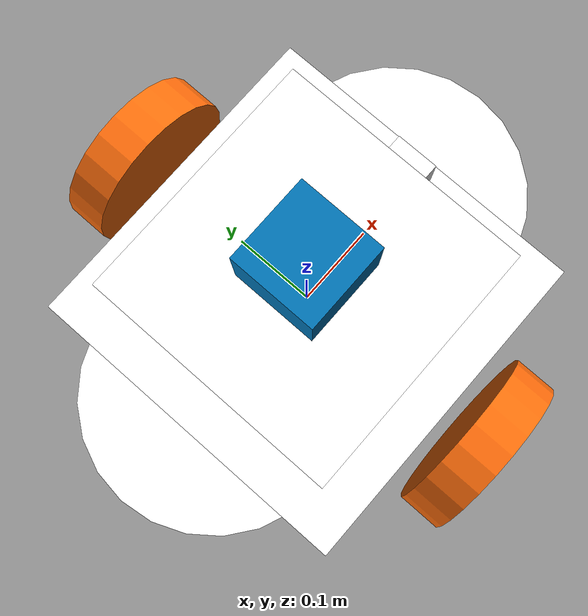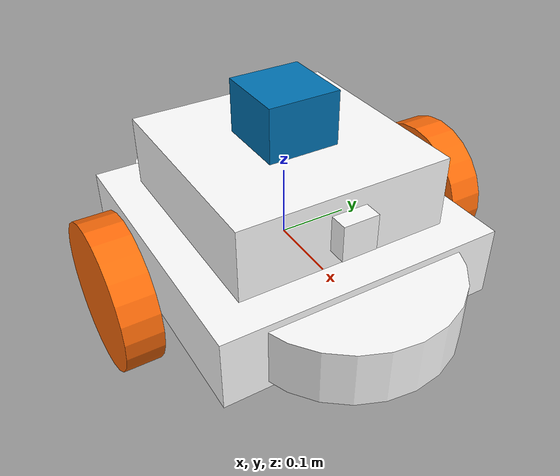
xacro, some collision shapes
<?xml version="1.0"?>
<robot name="myrobot" xmlns:xacro="http://www.ros.org/wiki/xacro">

<!-- #include matertals file ที่เขียนแยกไว้มา -->
  <xacro:include filename="$(find v_description)/urdf/materials.xacro"/>

<!-- #include Plug In file ที่เขียนแยกไว้สำหรับ Gazebo -->
  <xacro:include filename="$(find v_description)/urdf/v_bot.gazebo"/>

  <xacro:property name = "cameraSize" value = "0.05"/>
  <xacro:property name = "cameraMass" value = "0.1"/>

<!--> ////////////////////////////base/////////////////////////<-->

  <link name='v_base'>
    <pose>0 0 0.1 0 0 0</pose>

<!--  Inertia ของส่วน Body (ที่เป็น base )  ****** หมดคือค่าสมมุติ ผมไม่รู้ค่าจริงที่มันสัมพันธ์กับหุ่น-->
    <inertial>
      <mass value="3.0"/>
      <origin xyz="0.0 0 0.1" rpy=" 0 0 0"/>
      <inertia
          ixx="0.1" ixy="0" ixz="0"
          iyy="0.1" iyz="0"
          izz="0.1"
      />
    </inertial>

<!--  กำหนดขอบเขตการชนของหุ่น -->
    <collision name='v_base_collision'>
      <geometry>
        <box size=".4 .4 .1"/>
      </geometry>
    </collision>

<!-- การแสดงผลของและรูปร่างของส่วน Body  -->
    <visual name='v_base_visual'>
      <origin xyz="0 0 0" rpy=" 0 0 0"/>
      <geometry>
        <box size=".4 .4 .1"/>
      </geometry>
      <material name="white"/>
    </visual>

    <collision name = "back_base_col">
      <origin xyz="-0.15 0.0 0.0" rpy="0.0 0.0 0.0"/>
      <geometry>
        <cylinder radius="0.15" length="0.08"/>
      </geometry>
    </collision>
    <visual name = "back_base_vis">
      <origin xyz="-0.15 0.0 0.0" rpy="0.0 0.0 0.0"/>
      <geometry>
        <cylinder radius="0.15" length="0.08"/>
      </geometry>
      <material name = "white"/>
    </visual>

    <collision name = "front_base_col">
      <origin xyz="0.15 0.0 0.0" rpy="0.0 0.0 0.0"/>
      <geometry>
        <cylinder radius="0.15" length="0.08"/>
      </geometry>
    </collision>
    <visual name = "front_base_vis">
      <origin xyz="0.15 0.0 0.0" rpy="0.0 0.0 0.0"/>
      <geometry>
        <cylinder radius="0.15" length="0.08"/>
      </geometry>
      <material name = "white"/>
    </visual>

        <collision name = "v_second_base_col">
      <origin xyz="0.0 0.0 0.1" rpy="0.0 0.0 0.0"/>
      <geometry>
        <box size="0.3 0.3 0.1"/>
      </geometry>
    </collision>
    <visual name = "v_second_base_vis">
      <origin xyz="0.0 0.0 0.1" rpy="0.0 0.0 0.0"/>
      <geometry>
        <box size="0.3 0.3 0.1"/>
      </geometry>
      <material name = "white"/>
    </visual>

 <!--> ////////////////////////// Caster Back ///////////////////////<-->

<!-- ล้อ support หลัง-->
    <collision name='caster_back_collision'>
      <origin xyz="-0.15 0 -0.05" rpy=" 0 0 0"/>
      <geometry>
        <sphere radius="0.05"/>
      </geometry>
    </collision>

    <visual name='caster_back_visual'>
      <origin xyz="-0.15 0 -0.05" rpy=" 0 0 0"/>
      <geometry>
        <sphere radius="0.05"/>
      </geometry>
      <material name="orange"/>
    </visual>

<!--> /////////////////////////// Caster Front //////////////////////<-->
<!-- ล้อ support หน้า-->
    <collision name='caster_front_collision'>
      <origin xyz="0.15 0 -0.05" rpy=" 0 0 0"/>
      <geometry>
        <sphere radius="0.05"/>
      </geometry>
    </collision>

    <visual name='caster_front_visual'>
      <origin xyz="0.15 0 -0.05" rpy=" 0 0 0"/>
      <geometry>
        <sphere radius="0.05"/>
      </geometry>
      <material name="orange"/>
    </visual>

  </link>

<!--///////////////// สร้าง Link ล้อซ้าย-ขวา //////////////-->
  <link name="left_wheel">
    <collision name="collision">
      <origin xyz="0 0 0" rpy="0 1.5707 1.5707"/>
      <geometry>
        <cylinder radius="0.1" length="0.05"/>
      </geometry>
      <surface>
              <friction>
                 <ode>
                    <mu>20</mu>
                    <mu2>10</mu2>
                 </ode>
              </friction>
           </surface>
    </collision>

    <visual name="left_wheel_visual">
      <origin xyz="0 0 0" rpy="0 1.5707 1.5707"/>
      <geometry>
        <cylinder radius="0.1" length="0.05"/>
      </geometry>
      <material name="orange"/>
    </visual>
    <inertial>
      <origin xyz="0 0 0" rpy="0 1.5707 1.5707"/>
      <mass value="5"/>
      <inertia
        ixx=".1" ixy="0.0" ixz="0.0"
        iyy=".1" iyz="0.0"
        izz=".1"/>
    </inertial>
  </link>

  <link name="right_wheel">
    <collision name="collision">
      <origin xyz="0 0 0" rpy="0 1.5707 1.5707"/>
      <geometry>
        <cylinder radius="0.1" length="0.05"/>
      </geometry>
      <surface>
              <friction>
                 <ode>
                    <mu>20</mu>
                    <mu2>10</mu2>
                 </ode>
              </friction>
           </surface>
    </collision>

    <visual name="right_wheel_visual">
      <origin xyz="0 0 0" rpy="0 1.5707 1.5707"/>
      <geometry>
        <cylinder radius="0.1" length="0.05"/>
      </geometry>
      <material name="orange"/>
    </visual>
    <inertial>
      <origin xyz="0 0 0" rpy="0 1.5707 1.5707"/>
      <mass value="5"/>
      <inertia
        ixx=".1" ixy="0.0" ixz="0.0"
        iyy=".1" iyz="0.0"
        izz=".1"/>
    </inertial>
  </link>

<!-- ///////////////// สร้าง Joint  สำหรับตัวล้อและหุ่น ///////////////  -->
<!-- Joint type จะต้องเป็น continuous เพื่อให้หมุนล้อแกนโดยไม่มี limit  -->
<!--  โดย joint จะติดไปกับ Frame ของ body เป็นหลัก parent เลยต้องเป็น v_base(ชื่อ link ของ body )-->
    <joint type="continuous" name="left_wheel_joint">
    <origin xyz="0 0.25 0" rpy="0 0 0"/>
    <child link="left_wheel"/>
    <parent link="v_base"/>
    <axis xyz="0 1 0" rpy="0 0 0"/>
    <joint_properties damping="0.0" friction="0.1"/>
  </joint>

  <joint type="continuous" name="right_wheel_joint">
    <origin xyz="0 -0.25 0" rpy="0 0 0"/>
    <child link="right_wheel"/>
    <parent link="v_base"/>
    <axis xyz="0 1 0" rpy="0 0 0"/>
    <joint_properties damping="0.0" friction="0.1"/>
  </joint>

<!-- //////////////////////////////// Plug in Link////////////////////////////////// -->
<!-- /////////////// joint type เป็น Fix ทั้งหมด เพื่อให้ติดไปกับตัวหุ่น ////////////////////// -->
<!--> ////////////////////////////////// Camera //////////////////////////////<-->

  <link name="camera_link">
    <collision>
      <origin xyz="0 0 0" rpy="0 0 0"/>
      <geometry>
        <box size="${cameraSize} ${cameraSize} ${cameraSize}"/>
      </geometry>
    </collision>

    <visual>
      <origin xyz="0 0 0" rpy="0 0 0"/>
      <geometry>
        <box size="${cameraSize} ${cameraSize} ${cameraSize}"/>
      </geometry>
      <material name="white"/>
    </visual>

    <inertial>
      <mass value="${cameraMass}" />
      <origin xyz="0 0 0" rpy="0 0 0"/>
      <box_inertia m="${cameraMass}" x="${cameraSize}" y="${cameraSize}" z="${cameraSize}" />
      <inertia ixx="1e-6" ixy="0" ixz="0" iyy="1e-6" iyz="0" izz="1e-6" />
    </inertial>
  </link>

  <joint name="camera_joint" type="fixed">
    <axis xyz="0 1 0" />
    <origin xyz="0.15 0 0.1" rpy="0 0 0"/>
    <parent link="v_base"/>
    <child link="camera_link"/>
  </joint>

 <!-->///////////////////////////////////// Lidar //////////////////////////////<-->

  <link name="hokuyo_link">
    <collision>
      <origin xyz="0 0 0" rpy="0 0 0"/>
      <geometry>
    <box size="0.1 0.1 0.1"/>
      </geometry>
    </collision>

    <visual>
      <origin xyz="0 0 0" rpy="0 0 0"/>
      <geometry>
        <mesh filename="package://v_description/meshes/hokuyo.dae"/>
      </geometry>
    </visual>

    <inertial>
      <mass value="1e-5" />
      <origin xyz="0 0 0" rpy="0 0 0"/>
      <inertia ixx="1e-6" ixy="0" ixz="0" iyy="1e-6" iyz="0" izz="1e-6" />
    </inertial>
  </link>

    <joint name="hokuyo_joint" type="fixed">
    <axis xyz="0 1 0" />
    <origin xyz="0 0 0.175" rpy="0 0 0"/>
    <parent link="v_base"/>
    <child link="hokuyo_link"/>
  </joint>

</robot>

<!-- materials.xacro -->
<robot >

    <material name="black">
      <color rgba="0.0 0.0 0.0 1.0"/>
    </material>

    <material name="blue">
      <color rgba="0.0 0.0 0.8 1.0"/>
    </material>

    <material name="green">
      <color rgba="0.0 0.8 0.0 1.0"/>
    </material>

    <material name="grey">
      <color rgba="0.4 0.4 0.4 1.0"/>
    </material>

    <material name="orange">
      <color rgba="${255/255} ${108/255} ${10/255} 1.0"/>
    </material>

    <material name="brown">
      <color rgba="${222/255} ${207/255} ${195/255} 1.0"/>
    </material>

    <material name="red">
      <color rgba="0.8 0.0 0.0 1.0"/>
    </material>

    <material name="white">
      <color rgba="1.0 1.0 1.0 1.0"/>
    </material>

    <material name="yellow">
      <color rgba="1.0 1.0 0 1.0"/>
    </material>

  </robot>
